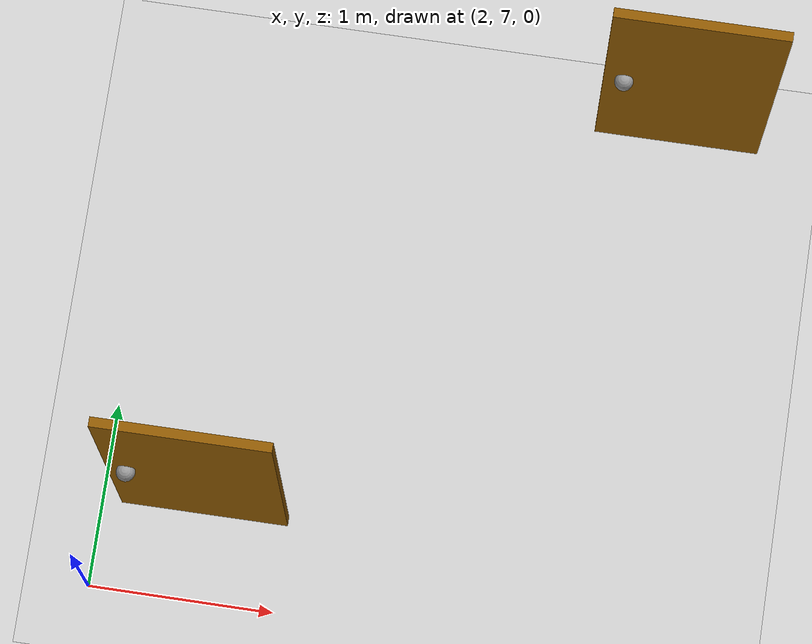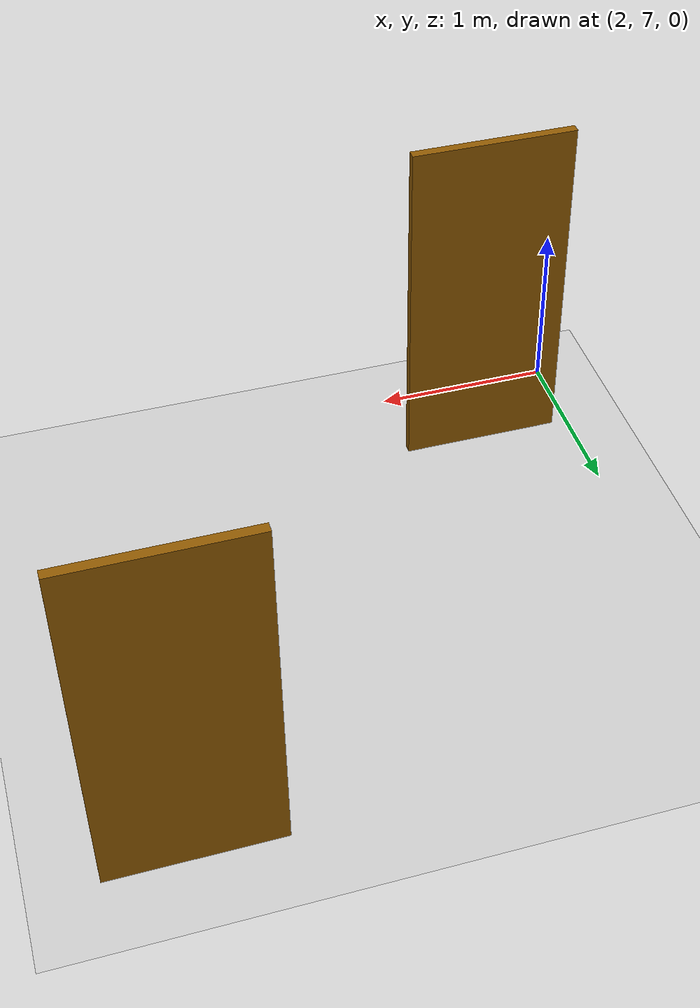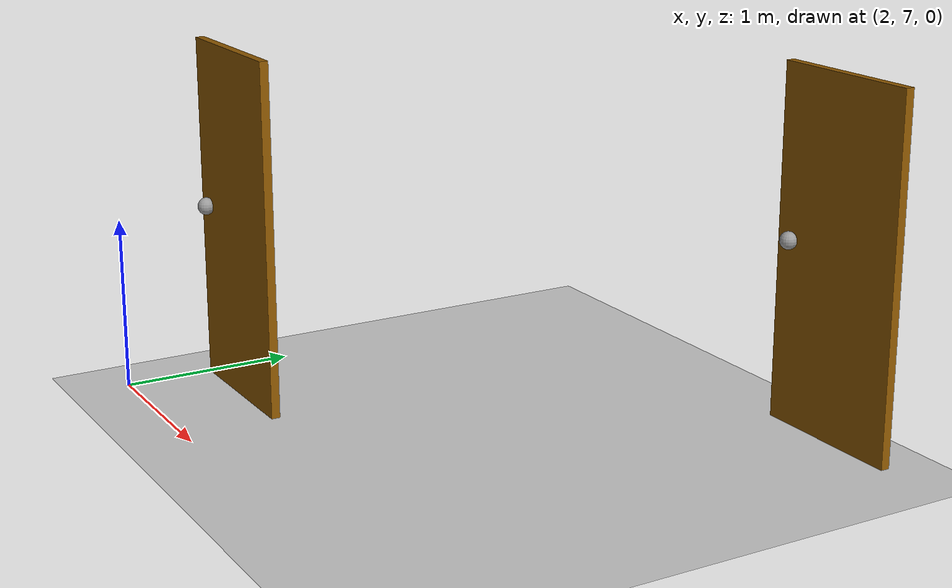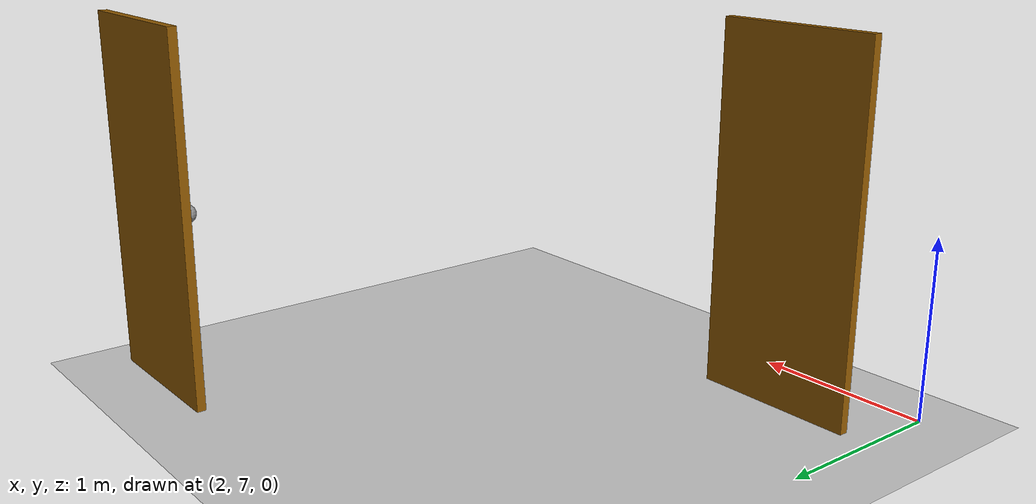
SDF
<sdf version="1.6">
 <world name="default">
  <model name="ground_plane">
   <static>1</static>
   <link name="link">
    <collision name="collision">
     <geometry><plane><normal>0 0 1</normal><size>100 100</size></plane></geometry>
     <surface>
      <contact><collide_bitmask>65535</collide_bitmask></contact>
      <friction><ode><mu>100</mu><mu2>50</mu2></ode></friction>
     </surface>
    </collision>
    <visual name="visual">
     <cast_shadows>0</cast_shadows>
     <geometry><plane><normal>0 0 1</normal><size>100 100</size></plane></geometry>
     <material>
      <script><uri>file://media/materials/scripts/gazebo.material</uri><name>Gazebo/Grey</name></script>
     </material>
    </visual>
   </link>
  </model>
  <model name="custom_door_0">
   <link name="link_0">
    <inertial>
     <mass>1</mass>
     <inertia>
      <ixx>0.166667</ixx>
      <ixy>0</ixy>
      <ixz>0</ixz>
      <iyy>0.166667</iyy>
      <iyz>0</iyz>
      <izz>0.166667</izz>
     </inertia>
    </inertial>
    <pose>0.023443 -0.170637 -0.020383 0 -0 0</pose>
    <visual name="visual">
     <geometry><box><size>0.05 0.9 2</size></box></geometry>
     <material>
      <lighting>1</lighting>
      <script><uri>file://media/materials/scripts/gazebo.material</uri><name>Gazebo/Grey</name></script>
      <shader type="vertex"><normal_map>__default__</normal_map></shader>
      <ambient>0.561 0.349 0.008 1</ambient>
      <diffuse>0.561 0.349 0.008 1</diffuse>
      <specular>0.561 0.349 0.008 1</specular>
      <emissive>0 0 0 1</emissive>
     </material>
    </visual>
    <collision name="collision">
     <geometry><box><size>0.05 0.9 2</size></box></geometry>
     <surface>
      <friction>
       <ode><mu>1</mu><mu2>1</mu2><fdir1>0 0 0</fdir1><slip1>0</slip1><slip2>0</slip2></ode>
       <torsional>
        <coefficient>1</coefficient>
        <patch_radius>0</patch_radius>
        <surface_radius>0</surface_radius>
        <use_patch_radius>1</use_patch_radius>
        <ode><slip>0</slip></ode>
       </torsional>
      </friction>
      <bounce><restitution_coefficient>0</restitution_coefficient><threshold>1e+06</threshold></bounce>
      <contact>
       <collide_without_contact>0</collide_without_contact>
       <collide_without_contact_bitmask>1</collide_without_contact_bitmask>
       <collide_bitmask>1</collide_bitmask>
       <ode>
        <soft_cfm>0</soft_cfm>
        <soft_erp>0.2</soft_erp>
        <kp>1e+13</kp>
        <kd>1</kd>
        <max_vel>0.01</max_vel>
        <min_depth>0</min_depth>
       </ode>
       <bullet>
        <split_impulse>1</split_impulse>
        <split_impulse_penetration_threshold>-0.01</split_impulse_penetration_threshold>
        <soft_cfm>0</soft_cfm>
        <soft_erp>0.2</soft_erp>
        <kp>1e+13</kp>
        <kd>1</kd>
       </bullet>
      </contact>
     </surface>
    </collision>
   </link>
   <link name="link_1">
    <inertial>
     <mass>1</mass>
     <inertia><ixx>0.1</ixx><ixy>0</ixy><ixz>0</ixz><iyy>0.1</iyy><iyz>0</iyz><izz>0.1</izz></inertia>
    </inertial>
    <pose>-0.023443 0.170636 0.020383 0 -0 0</pose>
    <gravity>0</gravity>
    <visual name="visual">
     <geometry><sphere><radius>0.05</radius></sphere></geometry>
     <material>
      <lighting>1</lighting>
      <script><uri>file://media/materials/scripts/gazebo.material</uri><name>Gazebo/Grey</name></script>
      <shader type="vertex"><normal_map>__default__</normal_map></shader>
      <ambient>0.729 0.741 0.714 1</ambient>
      <diffuse>0.729 0.741 0.714 1</diffuse>
      <specular>0.729 0.741 0.714 1</specular>
      <emissive>0 0 0 1</emissive>
     </material>
    </visual>
    <collision name="collision">
     <geometry><sphere><radius>0.05</radius></sphere></geometry>
     <surface>
      <friction>
       <ode><mu>1</mu><mu2>1</mu2><fdir1>0 0 0</fdir1><slip1>0</slip1><slip2>0</slip2></ode>
       <torsional>
        <coefficient>1</coefficient>
        <patch_radius>0</patch_radius>
        <surface_radius>0</surface_radius>
        <use_patch_radius>1</use_patch_radius>
        <ode><slip>0</slip></ode>
       </torsional>
      </friction>
      <bounce><restitution_coefficient>0</restitution_coefficient><threshold>1e+06</threshold></bounce>
      <contact>
       <collide_without_contact>0</collide_without_contact>
       <collide_without_contact_bitmask>1</collide_without_contact_bitmask>
       <collide_bitmask>1</collide_bitmask>
       <ode>
        <soft_cfm>0</soft_cfm>
        <soft_erp>0.2</soft_erp>
        <kp>1e+13</kp>
        <kd>1</kd>
        <max_vel>0.01</max_vel>
        <min_depth>0</min_depth>
       </ode>
       <bullet>
        <split_impulse>1</split_impulse>
        <split_impulse_penetration_threshold>-0.01</split_impulse_penetration_threshold>
        <soft_cfm>0</soft_cfm>
        <soft_erp>0.2</soft_erp>
        <kp>1e+13</kp>
        <kd>1</kd>
       </bullet>
      </contact>
     </surface>
    </collision>
   </link>
   <joint name="link_0_JOINT_0" type="fixed">
    <parent>link_0</parent>
    <child>link_1</child>
    <physics>
     <ode><limit><cfm>0</cfm><erp>0.2</erp></limit><suspension><cfm>0</cfm><erp>0.2</erp></suspension></ode>
    </physics>
   </joint>
   <static>1</static>
   <pose>2.38783 7.47226 1.06 0 -0 1.5708</pose>
  </model>
  <model name="custom_door_0_clone_1">
   <link name="link_0">
    <inertial>
     <mass>1</mass>
     <inertia>
      <ixx>0.166667</ixx>
      <ixy>0</ixy>
      <ixz>0</ixz>
      <iyy>0.166667</iyy>
      <iyz>0</iyz>
      <izz>0.166667</izz>
     </inertia>
    </inertial>
    <pose>0.023443 -0.170637 -0.020383 0 -0 0</pose>
    <visual name="visual">
     <geometry><box><size>0.05 0.9 2</size></box></geometry>
     <material>
      <lighting>1</lighting>
      <script><uri>file://media/materials/scripts/gazebo.material</uri><name>Gazebo/Grey</name></script>
      <shader type="vertex"><normal_map>__default__</normal_map></shader>
      <ambient>0.561 0.349 0.008 1</ambient>
      <diffuse>0.561 0.349 0.008 1</diffuse>
      <specular>0.561 0.349 0.008 1</specular>
      <emissive>0 0 0 1</emissive>
     </material>
    </visual>
    <collision name="collision">
     <geometry><box><size>0.05 0.9 2</size></box></geometry>
     <surface>
      <friction>
       <ode><mu>1</mu><mu2>1</mu2><fdir1>0 0 0</fdir1><slip1>0</slip1><slip2>0</slip2></ode>
       <torsional>
        <coefficient>1</coefficient>
        <patch_radius>0</patch_radius>
        <surface_radius>0</surface_radius>
        <use_patch_radius>1</use_patch_radius>
        <ode><slip>0</slip></ode>
       </torsional>
      </friction>
      <bounce><restitution_coefficient>0</restitution_coefficient><threshold>1e+06</threshold></bounce>
      <contact>
       <collide_without_contact>0</collide_without_contact>
       <collide_without_contact_bitmask>1</collide_without_contact_bitmask>
       <collide_bitmask>1</collide_bitmask>
       <ode>
        <soft_cfm>0</soft_cfm>
        <soft_erp>0.2</soft_erp>
        <kp>1e+13</kp>
        <kd>1</kd>
        <max_vel>0.01</max_vel>
        <min_depth>0</min_depth>
       </ode>
       <bullet>
        <split_impulse>1</split_impulse>
        <split_impulse_penetration_threshold>-0.01</split_impulse_penetration_threshold>
        <soft_cfm>0</soft_cfm>
        <soft_erp>0.2</soft_erp>
        <kp>1e+13</kp>
        <kd>1</kd>
       </bullet>
      </contact>
     </surface>
    </collision>
   </link>
   <link name="link_1">
    <inertial>
     <mass>1</mass>
     <inertia><ixx>0.1</ixx><ixy>0</ixy><ixz>0</ixz><iyy>0.1</iyy><iyz>0</iyz><izz>0.1</izz></inertia>
    </inertial>
    <pose>-0.023443 0.170636 0.020383 0 -0 0</pose>
    <gravity>0</gravity>
    <visual name="visual">
     <geometry><sphere><radius>0.05</radius></sphere></geometry>
     <material>
      <lighting>1</lighting>
      <script><uri>file://media/materials/scripts/gazebo.material</uri><name>Gazebo/Grey</name></script>
      <shader type="vertex"><normal_map>__default__</normal_map></shader>
      <ambient>0.729 0.741 0.714 1</ambient>
      <diffuse>0.729 0.741 0.714 1</diffuse>
      <specular>0.729 0.741 0.714 1</specular>
      <emissive>0 0 0 1</emissive>
     </material>
    </visual>
    <collision name="collision">
     <geometry><sphere><radius>0.05</radius></sphere></geometry>
     <surface>
      <friction>
       <ode><mu>1</mu><mu2>1</mu2><fdir1>0 0 0</fdir1><slip1>0</slip1><slip2>0</slip2></ode>
       <torsional>
        <coefficient>1</coefficient>
        <patch_radius>0</patch_radius>
        <surface_radius>0</surface_radius>
        <use_patch_radius>1</use_patch_radius>
        <ode><slip>0</slip></ode>
       </torsional>
      </friction>
      <bounce><restitution_coefficient>0</restitution_coefficient><threshold>1e+06</threshold></bounce>
      <contact>
       <collide_without_contact>0</collide_without_contact>
       <collide_without_contact_bitmask>1</collide_without_contact_bitmask>
       <collide_bitmask>1</collide_bitmask>
       <ode>
        <soft_cfm>0</soft_cfm>
        <soft_erp>0.2</soft_erp>
        <kp>1e+13</kp>
        <kd>1</kd>
        <max_vel>0.01</max_vel>
        <min_depth>0</min_depth>
       </ode>
       <bullet>
        <split_impulse>1</split_impulse>
        <split_impulse_penetration_threshold>-0.01</split_impulse_penetration_threshold>
        <soft_cfm>0</soft_cfm>
        <soft_erp>0.2</soft_erp>
        <kp>1e+13</kp>
        <kd>1</kd>
       </bullet>
      </contact>
     </surface>
    </collision>
   </link>
   <joint name="link_0_JOINT_0" type="fixed">
    <parent>link_0</parent>
    <child>link_1</child>
    <physics>
     <ode><limit><cfm>0</cfm><erp>0.2</erp></limit><suspension><cfm>0</cfm><erp>0.2</erp></suspension></ode>
    </physics>
   </joint>
   <static>1</static>
   <pose>4.62336 9.89553 1.06 0 -0 1.5708</pose>
  </model>
 </world>
</sdf>
